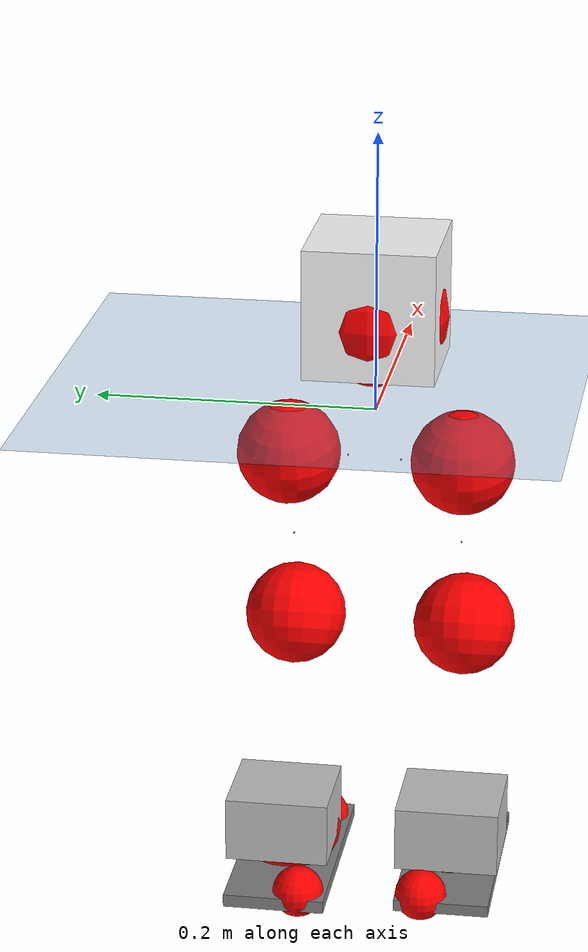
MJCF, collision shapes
<mujoco model="pi_12dof_release_v1">
  <compiler angle="radian" assetdir="assets" balanceinertia="true" inertiafromgeom="false"/>

  <option timestep="0.005" density="1.2" viscosity="2e-05"/>

  <size nkey="1"/>

  <visual>
    <quality shadowsize="8192"/>
    <map shadowclip="0.5"/>
  </visual>

  <default>
    <default class="/">
      <joint armature="0.01" damping="0.01" frictionloss="0.01"/>
      <geom contype="0" conaffinity="0" group="1" solref="-1000 -80"/>
      <site size="0.01 0.005 0.005" group="5"/>
      <general forcelimited="true" biastype="affine" gainprm="20" biasprm="0 -20 -0.5"/>
      <default class="foot">
        <geom size="0.0845 0.036 0.005" type="box" condim="6" group="4" priority="1" friction="0.9 0.2 0.2" solimp="0.015 1 0.005"/>
      </default>
      <default class="reward_collision_sphere">
        <geom group="5" rgba="1 0 0 1"/>
      </default>
    </default>
  </default>

  <asset>
    <texture type="skybox" colorspace="auto" name="//unnamed_texture_0" builtin="gradient" rgb1="0.95 0.95 0.95" rgb2="0.95 0.95 0.95" width="100" height="600"/>
    <texture type="2d" colorspace="auto" name="texplane" builtin="checker" rgb1="0.345 0.575 0.748" rgb2="0.345 0.575 0.748" markrgb="1 1 1" width="512" height="512"/>
    <material name="MatPlane" class="/" texture="texplane" texuniform="true" texrepeat="2 2" specular="0.9"/>
    <mesh name="baselink_1" class="/" file="baselink_1.STL"/>
    <mesh name="r_hip_pitch_link" class="/" file="r_hip_pitch_link.STL"/>
    <mesh name="r_hip_roll_link" class="/" file="r_hip_roll_link.STL"/>
    <mesh name="r_thigh_link" class="/" file="r_thigh_link.STL"/>
    <mesh name="r_calf_link" class="/" file="r_calf_link.STL"/>
    <mesh name="r_ankle_pitch_link" class="/" file="r_ankle_pitch_link.STL"/>
    <mesh name="r_ankle_roll_link" class="/" file="r_ankle_roll_link.STL"/>
    <mesh name="l_hip_pitch_link" class="/" file="l_hip_pitch_link.STL"/>
    <mesh name="l_hip_roll_link" class="/" file="l_hip_roll_link.STL"/>
    <mesh name="l_thigh_link" class="/" file="l_thigh_link.STL"/>
    <mesh name="l_calf_link" class="/" file="l_calf_link.STL"/>
    <mesh name="l_ankle_pitch_link" class="/" file="l_ankle_pitch_link.STL"/>
    <mesh name="l_ankle_roll_link" class="/" file="l_ankle_roll_link.STL"/>
  </asset>

  <worldbody>
    <geom name="floor" class="/" size="100 100 0.125" type="plane" group="0" material="MatPlane"/>
    <light name="toplight_shadow" class="/" pos="0 0 5" dir="0.0990148 0.0990148 -0.990148" type="directional" ambient="0.04 0.04 0.04" diffuse="0.55 0.55 0.55" specular="0.12 0.12 0.12"/>
    <light name="toplight_fill" class="/" pos="0 0 5" dir="0.0990148 0.0990148 -0.990148" type="directional" castshadow="false" ambient="0.04 0.04 0.04" diffuse="0.3 0.3 0.3" specular="0.08 0.08 0.08"/>
    <body name="trunk" pos="7.37639e-05 -6.84469e-05 -0.0010969" quat="1 -9.75329e-06 -8.31752e-05 -7.60435e-05">
      <inertial pos="0.00269509 0.00193454 0.0430897" quat="0.695237 0.00976086 0.00978713 0.718648" mass="1.70888" diaginertia="0.00812271 0.00285005 0.00476026"/>
      <joint name="//unnamed_joint_0" type="free"/>
      <geom name="//unnamed_geom_1" class="/" type="mesh" density="0" rgba="1 1 1 1" mesh="baselink_1"/>
      <geom name="//unnamed_geom_2" class="/" size="0.046288 0.046288 0.046288" pos="0 0 0.0821759" type="box" rgba="1 1 1 1"/>
      <geom name="//unnamed_geom_3" class="reward_collision_sphere" size="0.0509168" pos="0 0 0.0719039"/>
      <site name="imu" class="/" pos="-0.00507967 3.20981e-05 -0.00469333" size="0.00925759"/>
      <camera name="track" class="/" pos="0 -1.5851 0" quat="0.707107 0.707107 0 0" mode="trackcom"/>
      <camera name="ego_camera" class="/" pos="0.0718149 0 0.184896" quat="-0.5 -0.5 0.5 0.5"/>
      <body name="r_hip_pitch_link" pos="-0.000129758 -0.018194 -0.034927" quat="0.992152 -0.000304257 -0.125038 -0.000122522">
        <inertial pos="-0.000968714 -0.0445862 0.000507216" quat="-0.0191162 0.705723 -0.0285103 0.707656" mass="0.301042" diaginertia="8.86017e-05 3.11106e-05 9.64001e-05"/>
        <joint name="r_hip_pitch_joint" class="/" pos="0 0 0" axis="-0.00922756 -0.999904 -0.0103034" stiffness="0.00268588" range="-1.75213 1.23233" armature="0.00920771" damping="0.00961008" frictionloss="0.00861899"/>
        <geom name="//unnamed_geom_4" class="/" type="mesh" density="0" rgba="0.75294 0.75294 0.75294 1" mesh="r_hip_pitch_link"/>
        <geom name="//unnamed_geom_5" class="/" size="0.00046288 0.00046288 0.00046288" type="box" rgba="0.75294 0.75294 0.75294 1"/>
        <body name="r_hip_roll_link" pos="0.000475934 -0.0439465 2.92012e-06" quat="1 -2.77183e-05 -3.20941e-05 4.19373e-05">
          <inertial pos="-0.00113447 -0.000766066 -0.063508" quat="0.704657 -0.0783551 -0.0824236 0.700375" mass="0.296316" diaginertia="0.000269538 8.62523e-05 0.0001383"/>
          <joint name="r_hip_roll_joint" class="/" pos="0 0 0" axis="-0.99997 -0.00750555 -0.00189049" range="-0.119759 0.488807" armature="0.00935739" damping="0.00740277" frictionloss="0.00931285"/>
          <geom name="//unnamed_geom_6" class="/" type="mesh" density="0" rgba="0.75294 0.75294 0.75294 1" mesh="r_hip_roll_link"/>
          <geom name="//unnamed_geom_7" class="/" size="0.00046288 0.00046288 0.00046288" type="box" rgba="0.75294 0.75294 0.75294 1"/>
          <geom name="//unnamed_geom_8" class="reward_collision_sphere" size="0.0370304"/>
          <body name="r_thigh_link" pos="0.000396063 0.00186237 -0.0692892" quat="0.999999 0.000610924 0.000212032 0.000940055">
            <inertial pos="0.00060793 0.000762926 -0.0490074" quat="0.737328 0.675534 1.54581e-05 -0.000219605" mass="0.0890094" diaginertia="0.000100718 2.89272e-05 6.55937e-05"/>
            <joint name="r_thigh_joint" class="/" pos="0 0 0" axis="-0.000195766 -0.00038345 -1" range="-0.298635 0.569784" armature="0.0101011" damping="0.00276029" frictionloss="0.00914928"/>
            <geom name="//unnamed_geom_9" class="/" type="mesh" density="0" rgba="0.75294 0.75294 0.75294 1" mesh="r_thigh_link"/>
            <geom name="//unnamed_geom_10" class="/" size="0.00046288 0.00046288 0.00046288" type="box" rgba="0.75294 0.75294 0.75294 1"/>
            <body name="r_calf_link" pos="-0.000746418 -0.00128457 -0.072063" quat="0.947932 -0.000194126 0.318472 -0.000160851">
              <inertial pos="-0.000794705 -0.00157429 -0.0711095" quat="0.999984 -0.00204823 -0.000603333 0.00518702" mass="0.619417" diaginertia="0.00273656 0.00106851 0.000199536"/>
              <joint name="r_calf_joint" class="/" pos="0 0 0" axis="0.00454998 -0.999919 -0.0118671" stiffness="0.00508594" range="-1.63682 0.652329" armature="0.00919997" damping="0.00640184" frictionloss="0.00973772"/>
              <geom name="//unnamed_geom_11" class="/" type="mesh" density="0" rgba="0.75294 0.75294 0.75294 1" mesh="r_calf_link"/>
              <geom name="//unnamed_geom_12" class="/" size="0.00046288 0.00046288 0.00046288" type="box" rgba="0.75294 0.75294 0.75294 1"/>
              <geom name="//unnamed_geom_13" class="reward_collision_sphere" size="0.0370304"/>
              <body name="r_ankle_pitch_link" pos="0.00332774 0.0010272 -0.14387" quat="0.980023 -0.000293967 -0.198882 0.0003975">
                <inertial pos="0.00437957 0.00305631 -0.000205305" quat="0.001479 0.707078 -0.00269405 0.707129" mass="0.144705" diaginertia="0.000248156 7.22225e-05 0.000140434"/>
                <joint name="r_ankle_pitch_joint" class="/" pos="0 0 0" axis="0.00422515 -0.999991 -0.000754166" range="-1.31117 0.489093" armature="0.00935728" damping="0.0211642" frictionloss="0.0101607"/>
                <geom name="//unnamed_geom_14" class="/" type="mesh" density="0" rgba="0.75294 0.75294 0.75294 1" mesh="r_ankle_pitch_link"/>
                <geom name="//unnamed_geom_15" class="/" size="0.0361046 0.0370304 0.023144" type="box" rgba="0.75294 0.75294 0.75294 1"/>
                <body name="r_ankle_roll_link" pos="0.075696 0.00148185 0.000349743" quat="1 -8.87612e-05 -0.000151406 -2.23928e-05">
                  <inertial pos="-0.0221233 0.000855096 -0.0123598" quat="0.558633 0.430684 0.438682 0.556774" mass="0.39759" diaginertia="0.000912761 0.000321665 0.00032327"/>
                  <joint name="r_ankle_roll_joint" class="/" pos="0 0 0" axis="-0.999999 0.000508004 -0.000866206" range="-0.145919 0.156366" armature="0.00922193" damping="0.00744126" frictionloss="0.0104537"/>
                  <geom name="//unnamed_geom_16" class="/" type="mesh" density="0" rgba="0.75294 0.75294 0.75294 1" mesh="r_ankle_roll_link"/>
                  <geom name="//unnamed_geom_17" class="/" type="mesh" rgba="0.75294 0.75294 0.75294 1" mesh="r_ankle_roll_link"/>
                  <geom name="right_foot" class="foot" size="0.078436 0.0341777 0.0041665" pos="-0.0488341 0 -0.0451967"/>
                  <geom name="//unnamed_geom_19" class="reward_collision_sphere" size="0.0370304" pos="-0.0478766 0 -0.020544"/>
                  <geom name="//unnamed_geom_20" class="reward_collision_sphere" size="0.0185152" pos="0.014363 0.015851 -0.0410879"/>
                  <geom name="//unnamed_geom_21" class="reward_collision_sphere" size="0.0185152" pos="-0.114904 0.015851 -0.0410879"/>
                  <site name="right_foot" class="foot" pos="-0.0488341 0 -0.0451967" size="0.00925759"/>
                </body>
              </body>
            </body>
          </body>
        </body>
      </body>
      <body name="l_hip_pitch_link" pos="0.000795658 0.0196651 -0.0337337" quat="0.992175 -0.000206892 -0.124857 5.75057e-05">
        <inertial pos="0.00131364 0.040544 -0.000927232" quat="-0.0449072 0.700012 0.0382761 0.711689" mass="0.299124" diaginertia="0.000101994 3.31592e-05 0.000116105"/>
        <joint name="l_hip_pitch_joint" class="/" pos="0 0 0" axis="0.00115527 0.999998 -0.00186254" stiffness="0.000265033" range="-1.21405 1.70653" armature="0.00943759" damping="0.0093173" frictionloss="0.00839077"/>
        <geom name="//unnamed_geom_22" class="/" type="mesh" density="0" rgba="0.75294 0.75294 0.75294 1" mesh="l_hip_pitch_link"/>
        <geom name="//unnamed_geom_23" class="/" size="0.00046288 0.00046288 0.00046288" type="box" rgba="0.75294 0.75294 0.75294 1"/>
        <body name="l_hip_roll_link" pos="-2.86915e-05 0.042286 5.26374e-05" quat="1 0.000195028 -0.000200629 -3.88404e-05">
          <inertial pos="-0.000770499 -0.00102377 -0.0623518" quat="0.696326 -0.0740959 -0.0773589 0.709687" mass="0.310582" diaginertia="0.000277687 8.93507e-05 0.000150623"/>
          <joint name="l_hip_roll_joint" class="/" pos="0 0 0" axis="-0.999986 -0.00524358 -3.11013e-05" range="-0.448466 0.0690712" armature="0.00895603" damping="0.00242438" frictionloss="0.0094471"/>
          <geom name="//unnamed_geom_24" class="/" type="mesh" density="0" rgba="0.75294 0.75294 0.75294 1" mesh="l_hip_roll_link"/>
          <geom name="//unnamed_geom_25" class="/" size="0.00046288 0.00046288 0.00046288" type="box" rgba="0.75294 0.75294 0.75294 1"/>
          <geom name="//unnamed_geom_26" class="reward_collision_sphere" size="0.0370304"/>
          <body name="l_thigh_link" pos="0.00102757 -0.000841904 -0.0713673" quat="1 0.000300486 0.000469081 -0.000787717">
            <inertial pos="0.00208513 -0.000389478 -0.0500304" quat="0.675346 0.737501 3.99154e-05 0.000398372" mass="0.0898472" diaginertia="0.000105239 3.14423e-05 7.06205e-05"/>
            <joint name="l_thigh_joint" class="/" pos="0 0 0" axis="-0.00309514 -0.00384843 -0.999988" range="-0.620521 0.25861" armature="0.00953245" damping="0.0129262" frictionloss="0.00874136"/>
            <geom name="//unnamed_geom_27" class="/" type="mesh" density="0" rgba="0.75294 0.75294 0.75294 1" mesh="l_thigh_link"/>
            <geom name="//unnamed_geom_28" class="/" size="0.00046288 0.00046288 0.00046288" type="box" rgba="0.75294 0.75294 0.75294 1"/>
            <body name="l_calf_link" pos="0.000770737 0.00149556 -0.0722052" quat="0.947699 6.32443e-05 0.319163 0.00103204">
              <inertial pos="5.4224e-05 0.00194553 -0.0718024" quat="0.999947 0.00590071 -0.00405182 -0.00734299" mass="0.647929" diaginertia="0.00282621 0.00108929 0.000197908"/>
              <joint name="l_calf_joint" class="/" pos="0 0 0" axis="0.00102211 0.999999 0.00118237" range="-0.666517 1.66105" armature="0.00934003" damping="0.00290229" frictionloss="0.00898128"/>
              <geom name="//unnamed_geom_29" class="/" type="mesh" density="0" rgba="0.75294 0.75294 0.75294 1" mesh="l_calf_link"/>
              <geom name="//unnamed_geom_30" class="/" size="0.00046288 0.00046288 0.00046288" type="box" rgba="0.75294 0.75294 0.75294 1"/>
              <geom name="//unnamed_geom_31" class="reward_collision_sphere" size="0.0370304"/>
              <body name="l_ankle_pitch_link" pos="0.000673125 -0.000310717 -0.146269" quat="0.980065 -1.45319e-05 -0.198679 2.58289e-05">
                <inertial pos="0.00476112 0.00187278 -0.000134378" quat="0.00105016 0.702631 0.00582805 0.71153" mass="0.134755" diaginertia="0.000237981 6.70972e-05 0.000131819"/>
                <joint name="l_ankle_pitch_joint" class="/" pos="0 0 0" axis="-0.0124964 0.999922 0.000421189" range="-0.5038 1.2971" armature="0.00919854" damping="0" frictionloss="0.0096489"/>
                <geom name="//unnamed_geom_32" class="/" type="mesh" density="0" rgba="0.75294 0.75294 0.75294 1" mesh="l_ankle_pitch_link"/>
                <geom name="//unnamed_geom_33" class="/" size="0.0361046 0.0370304 0.023144" type="box" rgba="0.75294 0.75294 0.75294 1"/>
                <body name="l_ankle_roll_link" pos="0.0715838 -0.00138965 -0.000264907" quat="1 0.000589239 -0.000373497 7.17047e-05">
                  <inertial pos="-0.0243035 -0.000971528 -0.0150338" quat="0.558054 0.439587 0.437683 0.551155" mass="0.401299" diaginertia="0.000908232 0.000327942 0.000335738"/>
                  <joint name="l_ankle_roll_joint" class="/" pos="0 0 0" axis="-0.999912 -0.0132634 -0.000990362" range="-0.153876 0.10002" armature="0.00936114" damping="0.00837163" frictionloss="0.00805381"/>
                  <geom name="//unnamed_geom_34" class="/" type="mesh" density="0" rgba="0.75294 0.75294 0.75294 1" mesh="l_ankle_roll_link"/>
                  <geom name="//unnamed_geom_35" class="/" type="mesh" rgba="0.75294 0.75294 0.75294 1" mesh="l_ankle_roll_link"/>
                  <geom name="left_foot" class="foot" size="0.0817856 0.0363348 0.0045874" pos="-0.0488341 0 -0.0451967"/>
                  <geom name="//unnamed_geom_37" class="reward_collision_sphere" size="0.0370304" pos="-0.0478766 0 -0.020544"/>
                  <geom name="//unnamed_geom_38" class="reward_collision_sphere" size="0.0185152" pos="0.014363 -0.015851 -0.0410879"/>
                  <geom name="//unnamed_geom_39" class="reward_collision_sphere" size="0.0185152" pos="-0.114904 -0.015851 -0.0410879"/>
                  <site name="left_foot" class="foot" pos="-0.0488341 0 -0.0451967" size="0.00925759"/>
                </body>
              </body>
            </body>
          </body>
        </body>
      </body>
    </body>
  </worldbody>

  <contact>
    <pair class="/" geom1="floor" geom2="right_foot" name="//unnamed_contact_1"/>
    <pair class="/" geom1="floor" geom2="left_foot" name="//unnamed_contact_0"/>
  </contact>

  <actuator>
    <general name="r_hip_pitch_joint" class="/" joint="r_hip_pitch_joint" forcerange="-18.6889 18.6889" gainprm="18.9653" biasprm="0 -18.9653 -0.449803"/>
    <general name="r_hip_roll_joint" class="/" joint="r_hip_roll_joint" forcerange="-19.5234 19.5234" gainprm="18.9653" biasprm="0 -18.9653 -0.449803"/>
    <general name="r_thigh_joint" class="/" joint="r_thigh_joint" forcerange="-19.1954 19.1954" gainprm="18.9653" biasprm="0 -18.9653 -0.449803"/>
    <general name="r_calf_joint" class="/" joint="r_calf_joint" forcerange="-18.6631 18.6631" gainprm="18.9653" biasprm="0 -18.9653 -0.449803"/>
    <general name="r_ankle_pitch_joint" class="/" joint="r_ankle_pitch_joint" forcerange="-19.8459 19.8459" gainprm="18.9653" biasprm="0 -18.9653 -0.449803"/>
    <general name="r_ankle_roll_joint" class="/" joint="r_ankle_roll_joint" forcerange="-21.0794 21.0794" gainprm="18.9653" biasprm="0 -18.9653 -0.449803"/>
    <general name="l_hip_pitch_joint" class="/" joint="l_hip_pitch_joint" forcerange="-19.4676 19.4676" gainprm="18.9653" biasprm="0 -18.9653 -0.449803"/>
    <general name="l_hip_roll_joint" class="/" joint="l_hip_roll_joint" forcerange="-17.5627 17.5627" gainprm="18.9653" biasprm="0 -18.9653 -0.449803"/>
    <general name="l_thigh_joint" class="/" joint="l_thigh_joint" forcerange="-18.7396 18.7396" gainprm="18.9653" biasprm="0 -18.9653 -0.449803"/>
    <general name="l_calf_joint" class="/" joint="l_calf_joint" forcerange="-20.198 20.198" gainprm="18.9653" biasprm="0 -18.9653 -0.449803"/>
    <general name="l_ankle_pitch_joint" class="/" joint="l_ankle_pitch_joint" forcerange="-18.6771 18.6771" gainprm="18.9653" biasprm="0 -18.9653 -0.449803"/>
    <general name="l_ankle_roll_joint" class="/" joint="l_ankle_roll_joint" forcerange="-19.7808 19.7808" gainprm="18.9653" biasprm="0 -18.9653 -0.449803"/>
  </actuator>

  <sensor>
    <gyro site="imu" name="imu_angular_velocity"/>
    <velocimeter site="imu" name="imu_linear_velocity"/>
    <framelinvel objtype="site" objname="left_foot" name="left_foot_global_linear_velocity"/>
    <framelinvel objtype="site" objname="right_foot" name="right_foot_global_linear_velocity"/>
  </sensor>

  <keyframe>
    <key name="home" qpos="0 0 0.291 1 0 0 0 0.4 0 0 -0.8 0.4 0 -0.4 0 0 0.8 -0.4 0"/>
  </keyframe>
</mujoco>
